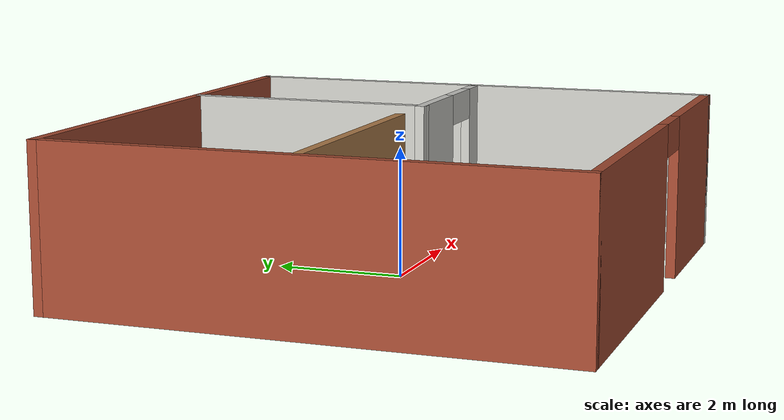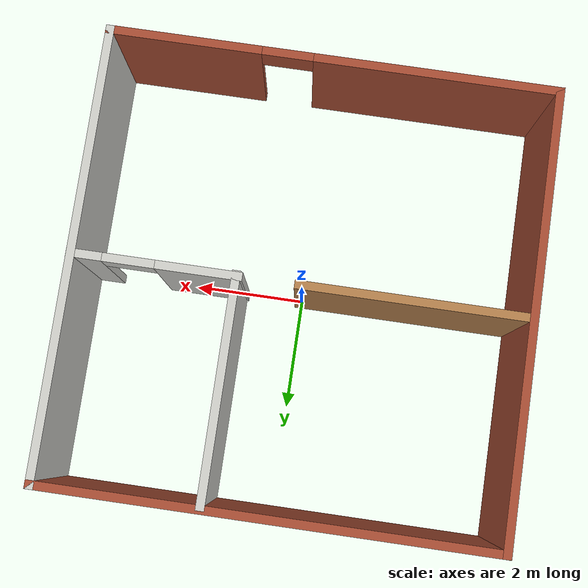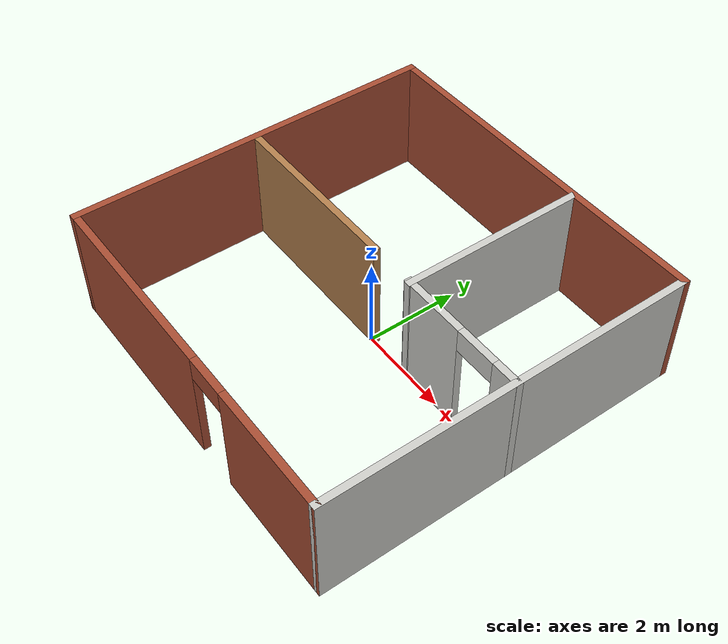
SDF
<?xml version='1.0'?>
<sdf version='1.6'>
  <model name='Studio'>
    <link name='Wall_0'>
      <pose frame=''>-0.000709 -3.925 0 0 -0 0</pose>
      <self_collide>0</self_collide>
      <kinematic>0</kinematic>
      <visual name='Wall_0_Visual_0'>
        <pose frame=''>-1.82072 0 1.25 0 -0 0</pose>
        <geometry>
          <box>
            <size>4.35856 0.15 2.5</size>
          </box>
        </geometry>
        <material>
          <script>
            <uri>file://media/materials/scripts/gazebo.material</uri>
            <name>Gazebo/Bricks</name>
          </script>
          <ambient>1 1 1 1</ambient>
          <shader type='pixel'/>
          <diffuse>1 1 1 1</diffuse>
          <specular>0.2 0.2 0.2 1</specular>
          <emissive>0 0 0 1</emissive>
        </material>
        <meta>
          <layer>0</layer>
        </meta>
        <transparency>0</transparency>
        <cast_shadows>1</cast_shadows>
      </visual>
      <visual name='Wall_0_Visual_1'>
        <pose frame=''>2.62928 0 1.25 0 -0 0</pose>
        <geometry>
          <box>
            <size>2.74144 0.15 2.5</size>
          </box>
        </geometry>
        <material>
          <script>
            <uri>file://media/materials/scripts/gazebo.material</uri>
            <name>Gazebo/Bricks</name>
          </script>
          <ambient>1 1 1 1</ambient>
          <shader type='pixel'/>
          <diffuse>1 1 1 1</diffuse>
          <specular>0.2 0.2 0.2 1</specular>
          <emissive>0 0 0 1</emissive>
        </material>
        <meta>
          <layer>0</layer>
        </meta>
        <transparency>0</transparency>
        <cast_shadows>1</cast_shadows>
      </visual>
      <visual name='Wall_0_Visual_2'>
        <pose frame=''>0.808556 0 2.25 0 -0 0</pose>
        <geometry>
          <box>
            <size>0.9 0.15 0.5</size>
          </box>
        </geometry>
        <material>
          <script>
            <uri>file://media/materials/scripts/gazebo.material</uri>
            <name>Gazebo/Bricks</name>
          </script>
          <ambient>1 1 1 1</ambient>
          <shader type='pixel'/>
          <diffuse>1 1 1 1</diffuse>
          <specular>0.2 0.2 0.2 1</specular>
          <emissive>0 0 0 1</emissive>
        </material>
        <meta>
          <layer>0</layer>
        </meta>
        <transparency>0</transparency>
        <cast_shadows>1</cast_shadows>
      </visual>
      <collision name='Wall_0_Collision_0'>
        <laser_retro>0</laser_retro>
        <max_contacts>10</max_contacts>
        <pose frame=''>-1.82072 0 1.25 0 -0 0</pose>
        <geometry>
          <box>
            <size>4.35856 0.15 2.5</size>
          </box>
        </geometry>
        <surface>
          <friction>
            <ode>
              <mu>1</mu>
              <mu2>1</mu2>
              <fdir1>0 0 0</fdir1>
              <slip1>0</slip1>
              <slip2>0</slip2>
            </ode>
            <torsional>
              <coefficient>1</coefficient>
              <patch_radius>0</patch_radius>
              <surface_radius>0</surface_radius>
              <use_patch_radius>1</use_patch_radius>
              <ode>
                <slip>0</slip>
              </ode>
            </torsional>
          </friction>
          <bounce>
            <restitution_coefficient>0</restitution_coefficient>
            <threshold>1e+06</threshold>
          </bounce>
          <contact>
            <collide_without_contact>0</collide_without_contact>
            <collide_without_contact_bitmask>1</collide_without_contact_bitmask>
            <collide_bitmask>1</collide_bitmask>
            <ode>
              <soft_cfm>0</soft_cfm>
              <soft_erp>0.2</soft_erp>
              <kp>1e+13</kp>
              <kd>1</kd>
              <max_vel>0.01</max_vel>
              <min_depth>0</min_depth>
            </ode>
            <bullet>
              <split_impulse>1</split_impulse>
              <split_impulse_penetration_threshold>-0.01</split_impulse_penetration_threshold>
              <soft_cfm>0</soft_cfm>
              <soft_erp>0.2</soft_erp>
              <kp>1e+13</kp>
              <kd>1</kd>
            </bullet>
          </contact>
        </surface>
      </collision>
      <collision name='Wall_0_Collision_2'>
        <laser_retro>0</laser_retro>
        <max_contacts>10</max_contacts>
        <pose frame=''>0.808556 0 2.25 0 -0 0</pose>
        <geometry>
          <box>
            <size>0.9 0.15 0.5</size>
          </box>
        </geometry>
        <surface>
          <friction>
            <ode>
              <mu>1</mu>
              <mu2>1</mu2>
              <fdir1>0 0 0</fdir1>
              <slip1>0</slip1>
              <slip2>0</slip2>
            </ode>
            <torsional>
              <coefficient>1</coefficient>
              <patch_radius>0</patch_radius>
              <surface_radius>0</surface_radius>
              <use_patch_radius>1</use_patch_radius>
              <ode>
                <slip>0</slip>
              </ode>
            </torsional>
          </friction>
          <bounce>
            <restitution_coefficient>0</restitution_coefficient>
            <threshold>1e+06</threshold>
          </bounce>
          <contact>
            <collide_without_contact>0</collide_without_contact>
            <collide_without_contact_bitmask>1</collide_without_contact_bitmask>
            <collide_bitmask>1</collide_bitmask>
            <ode>
              <soft_cfm>0</soft_cfm>
              <soft_erp>0.2</soft_erp>
              <kp>1e+13</kp>
              <kd>1</kd>
              <max_vel>0.01</max_vel>
              <min_depth>0</min_depth>
            </ode>
            <bullet>
              <split_impulse>1</split_impulse>
              <split_impulse_penetration_threshold>-0.01</split_impulse_penetration_threshold>
              <soft_cfm>0</soft_cfm>
              <soft_erp>0.2</soft_erp>
              <kp>1e+13</kp>
              <kd>1</kd>
            </bullet>
          </contact>
        </surface>
      </collision>
      <collision name='Wall_0_Collision_1'>
        <laser_retro>0</laser_retro>
        <max_contacts>10</max_contacts>
        <pose frame=''>2.62928 0 1.25 0 -0 0</pose>
        <geometry>
          <box>
            <size>2.74144 0.15 2.5</size>
          </box>
        </geometry>
        <surface>
          <friction>
            <ode>
              <mu>1</mu>
              <mu2>1</mu2>
              <fdir1>0 0 0</fdir1>
              <slip1>0</slip1>
              <slip2>0</slip2>
            </ode>
            <torsional>
              <coefficient>1</coefficient>
              <patch_radius>0</patch_radius>
              <surface_radius>0</surface_radius>
              <use_patch_radius>1</use_patch_radius>
              <ode>
                <slip>0</slip>
              </ode>
            </torsional>
          </friction>
          <bounce>
            <restitution_coefficient>0</restitution_coefficient>
            <threshold>1e+06</threshold>
          </bounce>
          <contact>
            <collide_without_contact>0</collide_without_contact>
            <collide_without_contact_bitmask>1</collide_without_contact_bitmask>
            <collide_bitmask>1</collide_bitmask>
            <ode>
              <soft_cfm>0</soft_cfm>
              <soft_erp>0.2</soft_erp>
              <kp>1e+13</kp>
              <kd>1</kd>
              <max_vel>0.01</max_vel>
              <min_depth>0</min_depth>
            </ode>
            <bullet>
              <split_impulse>1</split_impulse>
              <split_impulse_penetration_threshold>-0.01</split_impulse_penetration_threshold>
              <soft_cfm>0</soft_cfm>
              <soft_erp>0.2</soft_erp>
              <kp>1e+13</kp>
              <kd>1</kd>
            </bullet>
          </contact>
        </surface>
      </collision>
    </link>
    <link name='Wall_11'>
      <pose frame=''>-3.92571 0 0 0 0 -1.5708</pose>
      <self_collide>0</self_collide>
      <kinematic>0</kinematic>
      <visual name='Wall_11_Visual'>
        <pose frame=''>0 0 1.25 0 -0 0</pose>
        <geometry>
          <box>
            <size>8 0.15 2.5</size>
          </box>
        </geometry>
        <material>
          <script>
            <uri>file://media/materials/scripts/gazebo.material</uri>
            <name>Gazebo/Bricks</name>
          </script>
          <ambient>1 1 1 1</ambient>
          <shader type='pixel'/>
          <diffuse>1 1 1 1</diffuse>
          <specular>0.2 0.2 0.2 1</specular>
          <emissive>0 0 0 1</emissive>
        </material>
        <meta>
          <layer>0</layer>
        </meta>
        <transparency>0</transparency>
        <cast_shadows>1</cast_shadows>
      </visual>
      <collision name='Wall_11_Collision'>
        <laser_retro>0</laser_retro>
        <max_contacts>10</max_contacts>
        <pose frame=''>0 0 1.25 0 -0 0</pose>
        <geometry>
          <box>
            <size>8 0.15 2.5</size>
          </box>
        </geometry>
        <surface>
          <friction>
            <ode>
              <mu>1</mu>
              <mu2>1</mu2>
              <fdir1>0 0 0</fdir1>
              <slip1>0</slip1>
              <slip2>0</slip2>
            </ode>
            <torsional>
              <coefficient>1</coefficient>
              <patch_radius>0</patch_radius>
              <surface_radius>0</surface_radius>
              <use_patch_radius>1</use_patch_radius>
              <ode>
                <slip>0</slip>
              </ode>
            </torsional>
          </friction>
          <bounce>
            <restitution_coefficient>0</restitution_coefficient>
            <threshold>1e+06</threshold>
          </bounce>
          <contact>
            <collide_without_contact>0</collide_without_contact>
            <collide_without_contact_bitmask>1</collide_without_contact_bitmask>
            <collide_bitmask>1</collide_bitmask>
            <ode>
              <soft_cfm>0</soft_cfm>
              <soft_erp>0.2</soft_erp>
              <kp>1e+13</kp>
              <kd>1</kd>
              <max_vel>0.01</max_vel>
              <min_depth>0</min_depth>
            </ode>
            <bullet>
              <split_impulse>1</split_impulse>
              <split_impulse_penetration_threshold>-0.01</split_impulse_penetration_threshold>
              <soft_cfm>0</soft_cfm>
              <soft_erp>0.2</soft_erp>
              <kp>1e+13</kp>
              <kd>1</kd>
            </bullet>
          </contact>
        </surface>
      </collision>
    </link>
    <link name='Wall_13'>
      <pose frame=''>-1.88191 0.037007 0 0 -0 3.14159</pose>
      <self_collide>0</self_collide>
      <kinematic>0</kinematic>
      <visual name='Wall_13_Visual'>
        <pose frame=''>0 0 1.25 0 -0 0</pose>
        <geometry>
          <box>
            <size>4 0.15 2.5</size>
          </box>
        </geometry>
        <material>
          <script>
            <uri>file://media/materials/scripts/gazebo.material</uri>
            <name>Gazebo/Wood</name>
          </script>
          <ambient>1 1 1 1</ambient>
          <shader type='pixel'/>
          <diffuse>1 1 1 1</diffuse>
          <specular>0.2 0.2 0.2 1</specular>
          <emissive>0 0 0 1</emissive>
        </material>
        <meta>
          <layer>0</layer>
        </meta>
        <transparency>0</transparency>
        <cast_shadows>1</cast_shadows>
      </visual>
      <collision name='Wall_13_Collision'>
        <laser_retro>0</laser_retro>
        <max_contacts>10</max_contacts>
        <pose frame=''>0 0 1.25 0 -0 0</pose>
        <geometry>
          <box>
            <size>4 0.15 2.5</size>
          </box>
        </geometry>
        <surface>
          <friction>
            <ode>
              <mu>1</mu>
              <mu2>1</mu2>
              <fdir1>0 0 0</fdir1>
              <slip1>0</slip1>
              <slip2>0</slip2>
            </ode>
            <torsional>
              <coefficient>1</coefficient>
              <patch_radius>0</patch_radius>
              <surface_radius>0</surface_radius>
              <use_patch_radius>1</use_patch_radius>
              <ode>
                <slip>0</slip>
              </ode>
            </torsional>
          </friction>
          <bounce>
            <restitution_coefficient>0</restitution_coefficient>
            <threshold>1e+06</threshold>
          </bounce>
          <contact>
            <collide_without_contact>0</collide_without_contact>
            <collide_without_contact_bitmask>1</collide_without_contact_bitmask>
            <collide_bitmask>1</collide_bitmask>
            <ode>
              <soft_cfm>0</soft_cfm>
              <soft_erp>0.2</soft_erp>
              <kp>1e+13</kp>
              <kd>1</kd>
              <max_vel>0.01</max_vel>
              <min_depth>0</min_depth>
            </ode>
            <bullet>
              <split_impulse>1</split_impulse>
              <split_impulse_penetration_threshold>-0.01</split_impulse_penetration_threshold>
              <soft_cfm>0</soft_cfm>
              <soft_erp>0.2</soft_erp>
              <kp>1e+13</kp>
              <kd>1</kd>
            </bullet>
          </contact>
        </surface>
      </collision>
    </link>
    <link name='Wall_15'>
      <pose frame=''>1.10961 1.94575 0 0 0 -1.5708</pose>
      <self_collide>0</self_collide>
      <kinematic>0</kinematic>
      <visual name='Wall_15_Visual'>
        <pose frame=''>0 0 1.25 0 -0 0</pose>
        <geometry>
          <box>
            <size>4 0.15 2.5</size>
          </box>
        </geometry>
        <material>
          <script>
            <uri>file://media/materials/scripts/gazebo.material</uri>
            <name>Gazebo/CeilingTiled</name>
          </script>
          <ambient>0.435294 0.796078 0.67451 1</ambient>
          <shader type='pixel'/>
          <diffuse>1 1 1 1</diffuse>
          <specular>0 0 0 1</specular>
          <emissive>0 0 0 1</emissive>
        </material>
        <meta>
          <layer>0</layer>
        </meta>
        <transparency>0</transparency>
        <cast_shadows>1</cast_shadows>
      </visual>
      <collision name='Wall_15_Collision'>
        <laser_retro>0</laser_retro>
        <max_contacts>10</max_contacts>
        <pose frame=''>0 0 1.25 0 -0 0</pose>
        <geometry>
          <box>
            <size>4 0.15 2.5</size>
          </box>
        </geometry>
        <surface>
          <friction>
            <ode>
              <mu>1</mu>
              <mu2>1</mu2>
              <fdir1>0 0 0</fdir1>
              <slip1>0</slip1>
              <slip2>0</slip2>
            </ode>
            <torsional>
              <coefficient>1</coefficient>
              <patch_radius>0</patch_radius>
              <surface_radius>0</surface_radius>
              <use_patch_radius>1</use_patch_radius>
              <ode>
                <slip>0</slip>
              </ode>
            </torsional>
          </friction>
          <bounce>
            <restitution_coefficient>0</restitution_coefficient>
            <threshold>1e+06</threshold>
          </bounce>
          <contact>
            <collide_without_contact>0</collide_without_contact>
            <collide_without_contact_bitmask>1</collide_without_contact_bitmask>
            <collide_bitmask>1</collide_bitmask>
            <ode>
              <soft_cfm>0</soft_cfm>
              <soft_erp>0.2</soft_erp>
              <kp>1e+13</kp>
              <kd>1</kd>
              <max_vel>0.01</max_vel>
              <min_depth>0</min_depth>
            </ode>
            <bullet>
              <split_impulse>1</split_impulse>
              <split_impulse_penetration_threshold>-0.01</split_impulse_penetration_threshold>
              <soft_cfm>0</soft_cfm>
              <soft_erp>0.2</soft_erp>
              <kp>1e+13</kp>
              <kd>1</kd>
            </bullet>
          </contact>
        </surface>
      </collision>
    </link>
    <link name='Wall_17'>
      <pose frame=''>2.50071 0.04093 0 0 -0 0</pose>
      <self_collide>0</self_collide>
      <kinematic>0</kinematic>
      <visual name='Wall_17_Visual_0'>
        <pose frame=''>-0.754244 0 1.25 0 -0 0</pose>
        <geometry>
          <box>
            <size>1.49151 0.15 2.5</size>
          </box>
        </geometry>
        <material>
          <script>
            <uri>file://media/materials/scripts/gazebo.material</uri>
            <name>Gazebo/CeilingTiled</name>
          </script>
          <ambient>0.435294 0.796078 0.67451 1</ambient>
          <shader type='pixel'/>
          <diffuse>1 1 1 1</diffuse>
          <specular>0 0 0 1</specular>
          <emissive>0 0 0 1</emissive>
        </material>
        <meta>
          <layer>0</layer>
        </meta>
        <transparency>0</transparency>
        <cast_shadows>1</cast_shadows>
      </visual>
      <visual name='Wall_17_Visual_1'>
        <pose frame=''>1.19576 0 1.25 0 -0 0</pose>
        <geometry>
          <box>
            <size>0.608487 0.15 2.5</size>
          </box>
        </geometry>
        <material>
          <script>
            <uri>file://media/materials/scripts/gazebo.material</uri>
            <name>Gazebo/CeilingTiled</name>
          </script>
          <ambient>0.435294 0.796078 0.67451 1</ambient>
          <shader type='pixel'/>
          <diffuse>1 1 1 1</diffuse>
          <specular>0 0 0 1</specular>
          <emissive>0 0 0 1</emissive>
        </material>
        <meta>
          <layer>0</layer>
        </meta>
        <transparency>0</transparency>
        <cast_shadows>1</cast_shadows>
      </visual>
      <visual name='Wall_17_Visual_2'>
        <pose frame=''>0.441513 0 2.25 0 -0 0</pose>
        <geometry>
          <box>
            <size>0.9 0.15 0.5</size>
          </box>
        </geometry>
        <material>
          <script>
            <uri>file://media/materials/scripts/gazebo.material</uri>
            <name>Gazebo/CeilingTiled</name>
          </script>
          <ambient>0.435294 0.796078 0.67451 1</ambient>
          <shader type='pixel'/>
          <diffuse>1 1 1 1</diffuse>
          <specular>0 0 0 1</specular>
          <emissive>0 0 0 1</emissive>
        </material>
        <meta>
          <layer>0</layer>
        </meta>
        <transparency>0</transparency>
        <cast_shadows>1</cast_shadows>
      </visual>
      <collision name='Wall_17_Collision_0'>
        <laser_retro>0</laser_retro>
        <max_contacts>10</max_contacts>
        <pose frame=''>-0.754244 0 1.25 0 -0 0</pose>
        <geometry>
          <box>
            <size>1.49151 0.15 2.5</size>
          </box>
        </geometry>
        <surface>
          <friction>
            <ode>
              <mu>1</mu>
              <mu2>1</mu2>
              <fdir1>0 0 0</fdir1>
              <slip1>0</slip1>
              <slip2>0</slip2>
            </ode>
            <torsional>
              <coefficient>1</coefficient>
              <patch_radius>0</patch_radius>
              <surface_radius>0</surface_radius>
              <use_patch_radius>1</use_patch_radius>
              <ode>
                <slip>0</slip>
              </ode>
            </torsional>
          </friction>
          <bounce>
            <restitution_coefficient>0</restitution_coefficient>
            <threshold>1e+06</threshold>
          </bounce>
          <contact>
            <collide_without_contact>0</collide_without_contact>
            <collide_without_contact_bitmask>1</collide_without_contact_bitmask>
            <collide_bitmask>1</collide_bitmask>
            <ode>
              <soft_cfm>0</soft_cfm>
              <soft_erp>0.2</soft_erp>
              <kp>1e+13</kp>
              <kd>1</kd>
              <max_vel>0.01</max_vel>
              <min_depth>0</min_depth>
            </ode>
            <bullet>
              <split_impulse>1</split_impulse>
              <split_impulse_penetration_threshold>-0.01</split_impulse_penetration_threshold>
              <soft_cfm>0</soft_cfm>
              <soft_erp>0.2</soft_erp>
              <kp>1e+13</kp>
              <kd>1</kd>
            </bullet>
          </contact>
        </surface>
      </collision>
      <collision name='Wall_17_Collision_1'>
        <laser_retro>0</laser_retro>
        <max_contacts>10</max_contacts>
        <pose frame=''>1.19576 0 1.25 0 -0 0</pose>
        <geometry>
          <box>
            <size>0.608487 0.15 2.5</size>
          </box>
        </geometry>
        <surface>
          <friction>
            <ode>
              <mu>1</mu>
              <mu2>1</mu2>
              <fdir1>0 0 0</fdir1>
              <slip1>0</slip1>
              <slip2>0</slip2>
            </ode>
            <torsional>
              <coefficient>1</coefficient>
              <patch_radius>0</patch_radius>
              <surface_radius>0</surface_radius>
              <use_patch_radius>1</use_patch_radius>
              <ode>
                <slip>0</slip>
              </ode>
            </torsional>
          </friction>
          <bounce>
            <restitution_coefficient>0</restitution_coefficient>
            <threshold>1e+06</threshold>
          </bounce>
          <contact>
            <collide_without_contact>0</collide_without_contact>
            <collide_without_contact_bitmask>1</collide_without_contact_bitmask>
            <collide_bitmask>1</collide_bitmask>
            <ode>
              <soft_cfm>0</soft_cfm>
              <soft_erp>0.2</soft_erp>
              <kp>1e+13</kp>
              <kd>1</kd>
              <max_vel>0.01</max_vel>
              <min_depth>0</min_depth>
            </ode>
            <bullet>
              <split_impulse>1</split_impulse>
              <split_impulse_penetration_threshold>-0.01</split_impulse_penetration_threshold>
              <soft_cfm>0</soft_cfm>
              <soft_erp>0.2</soft_erp>
              <kp>1e+13</kp>
              <kd>1</kd>
            </bullet>
          </contact>
        </surface>
      </collision>
      <collision name='Wall_17_Collision_2'>
        <laser_retro>0</laser_retro>
        <max_contacts>10</max_contacts>
        <pose frame=''>0.441513 0 2.25 0 -0 0</pose>
        <geometry>
          <box>
            <size>0.9 0.15 0.5</size>
          </box>
        </geometry>
        <surface>
          <friction>
            <ode>
              <mu>1</mu>
              <mu2>1</mu2>
              <fdir1>0 0 0</fdir1>
              <slip1>0</slip1>
              <slip2>0</slip2>
            </ode>
            <torsional>
              <coefficient>1</coefficient>
              <patch_radius>0</patch_radius>
              <surface_radius>0</surface_radius>
              <use_patch_radius>1</use_patch_radius>
              <ode>
                <slip>0</slip>
              </ode>
            </torsional>
          </friction>
          <bounce>
            <restitution_coefficient>0</restitution_coefficient>
            <threshold>1e+06</threshold>
          </bounce>
          <contact>
            <collide_without_contact>0</collide_without_contact>
            <collide_without_contact_bitmask>1</collide_without_contact_bitmask>
            <collide_bitmask>1</collide_bitmask>
            <ode>
              <soft_cfm>0</soft_cfm>
              <soft_erp>0.2</soft_erp>
              <kp>1e+13</kp>
              <kd>1</kd>
              <max_vel>0.01</max_vel>
              <min_depth>0</min_depth>
            </ode>
            <bullet>
              <split_impulse>1</split_impulse>
              <split_impulse_penetration_threshold>-0.01</split_impulse_penetration_threshold>
              <soft_cfm>0</soft_cfm>
              <soft_erp>0.2</soft_erp>
              <kp>1e+13</kp>
              <kd>1</kd>
            </bullet>
          </contact>
        </surface>
      </collision>
    </link>
    <link name='Wall_4'>
      <pose frame=''>3.92429 0 0 0 -0 1.5708</pose>
      <self_collide>0</self_collide>
      <kinematic>0</kinematic>
      <visual name='Wall_4_Visual'>
        <pose frame=''>0 0 1.25 0 -0 0</pose>
        <geometry>
          <box>
            <size>8 0.15 2.5</size>
          </box>
        </geometry>
        <material>
          <script>
            <uri>file://media/materials/scripts/gazebo.material</uri>
            <name>Gazebo/CeilingTiled</name>
          </script>
          <ambient>0.435294 0.796078 0.67451 1</ambient>
          <shader type='pixel'/>
          <diffuse>1 1 1 1</diffuse>
          <specular>0 0 0 1</specular>
          <emissive>0 0 0 1</emissive>
        </material>
        <meta>
          <layer>0</layer>
        </meta>
        <transparency>0</transparency>
        <cast_shadows>1</cast_shadows>
      </visual>
      <collision name='Wall_4_Collision'>
        <laser_retro>0</laser_retro>
        <max_contacts>10</max_contacts>
        <pose frame=''>0 0 1.25 0 -0 0</pose>
        <geometry>
          <box>
            <size>8 0.15 2.5</size>
          </box>
        </geometry>
        <surface>
          <friction>
            <ode>
              <mu>1</mu>
              <mu2>1</mu2>
              <fdir1>0 0 0</fdir1>
              <slip1>0</slip1>
              <slip2>0</slip2>
            </ode>
            <torsional>
              <coefficient>1</coefficient>
              <patch_radius>0</patch_radius>
              <surface_radius>0</surface_radius>
              <use_patch_radius>1</use_patch_radius>
              <ode>
                <slip>0</slip>
              </ode>
            </torsional>
          </friction>
          <bounce>
            <restitution_coefficient>0</restitution_coefficient>
            <threshold>1e+06</threshold>
          </bounce>
          <contact>
            <collide_without_contact>0</collide_without_contact>
            <collide_without_contact_bitmask>1</collide_without_contact_bitmask>
            <collide_bitmask>1</collide_bitmask>
            <ode>
              <soft_cfm>0</soft_cfm>
              <soft_erp>0.2</soft_erp>
              <kp>1e+13</kp>
              <kd>1</kd>
              <max_vel>0.01</max_vel>
              <min_depth>0</min_depth>
            </ode>
            <bullet>
              <split_impulse>1</split_impulse>
              <split_impulse_penetration_threshold>-0.01</split_impulse_penetration_threshold>
              <soft_cfm>0</soft_cfm>
              <soft_erp>0.2</soft_erp>
              <kp>1e+13</kp>
              <kd>1</kd>
            </bullet>
          </contact>
        </surface>
      </collision>
    </link>
    <link name='Wall_9'>
      <pose frame=''>-0.000709 3.925 0 0 -0 3.14159</pose>
      <self_collide>0</self_collide>
      <kinematic>0</kinematic>
      <visual name='Wall_9_Visual'>
        <pose frame=''>0 0 1.25 0 -0 0</pose>
        <geometry>
          <box>
            <size>8 0.15 2.5</size>
          </box>
        </geometry>
        <material>
          <script>
            <uri>file://media/materials/scripts/gazebo.material</uri>
            <name>Gazebo/Bricks</name>
          </script>
          <ambient>1 1 1 1</ambient>
          <shader type='pixel'/>
          <diffuse>1 1 1 1</diffuse>
          <specular>0.2 0.2 0.2 1</specular>
          <emissive>0 0 0 1</emissive>
        </material>
        <meta>
          <layer>0</layer>
        </meta>
        <transparency>0</transparency>
        <cast_shadows>1</cast_shadows>
      </visual>
      <collision name='Wall_9_Collision'>
        <laser_retro>0</laser_retro>
        <max_contacts>10</max_contacts>
        <pose frame=''>0 0 1.25 0 -0 0</pose>
        <geometry>
          <box>
            <size>8 0.15 2.5</size>
          </box>
        </geometry>
        <surface>
          <friction>
            <ode>
              <mu>1</mu>
              <mu2>1</mu2>
              <fdir1>0 0 0</fdir1>
              <slip1>0</slip1>
              <slip2>0</slip2>
            </ode>
            <torsional>
              <coefficient>1</coefficient>
              <patch_radius>0</patch_radius>
              <surface_radius>0</surface_radius>
              <use_patch_radius>1</use_patch_radius>
              <ode>
                <slip>0</slip>
              </ode>
            </torsional>
          </friction>
          <bounce>
            <restitution_coefficient>0</restitution_coefficient>
            <threshold>1e+06</threshold>
          </bounce>
          <contact>
            <collide_without_contact>0</collide_without_contact>
            <collide_without_contact_bitmask>1</collide_without_contact_bitmask>
            <collide_bitmask>1</collide_bitmask>
            <ode>
              <soft_cfm>0</soft_cfm>
              <soft_erp>0.2</soft_erp>
              <kp>1e+13</kp>
              <kd>1</kd>
              <max_vel>0.01</max_vel>
              <min_depth>0</min_depth>
            </ode>
            <bullet>
              <split_impulse>1</split_impulse>
              <split_impulse_penetration_threshold>-0.01</split_impulse_penetration_threshold>
              <soft_cfm>0</soft_cfm>
              <soft_erp>0.2</soft_erp>
              <kp>1e+13</kp>
              <kd>1</kd>
            </bullet>
          </contact>
        </surface>
      </collision>
    </link>
    <static>1</static>
    <allow_auto_disable>1</allow_auto_disable>
  </model>
</sdf>
